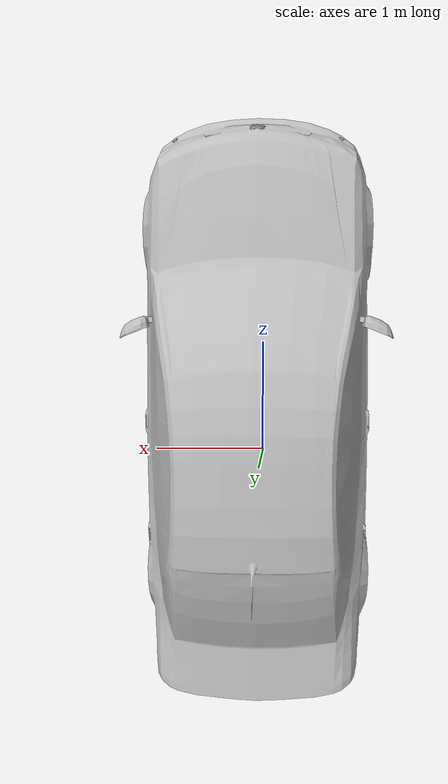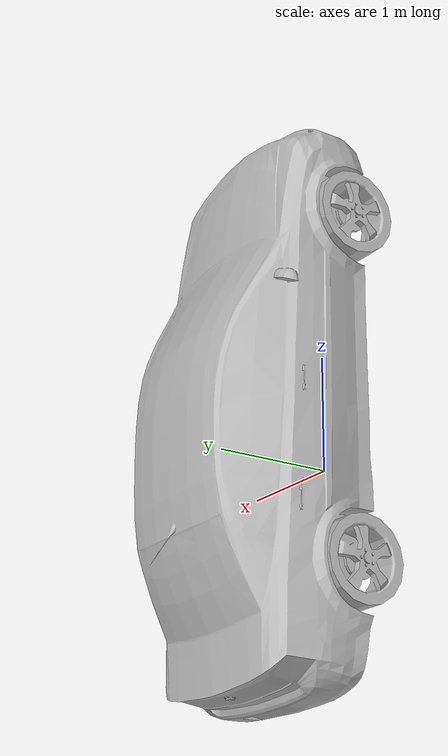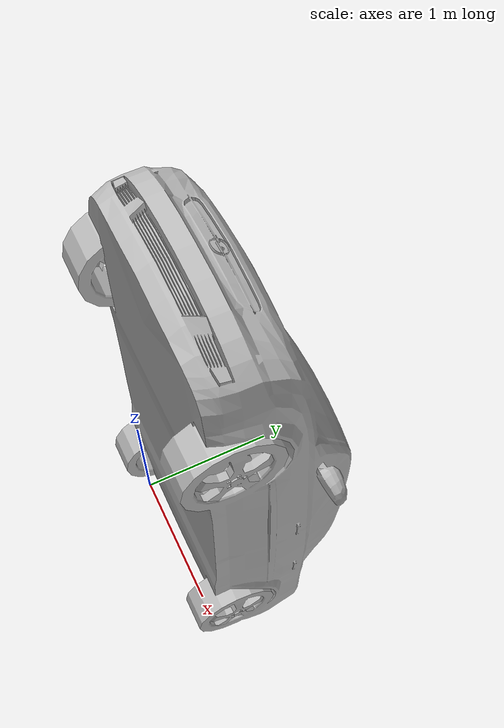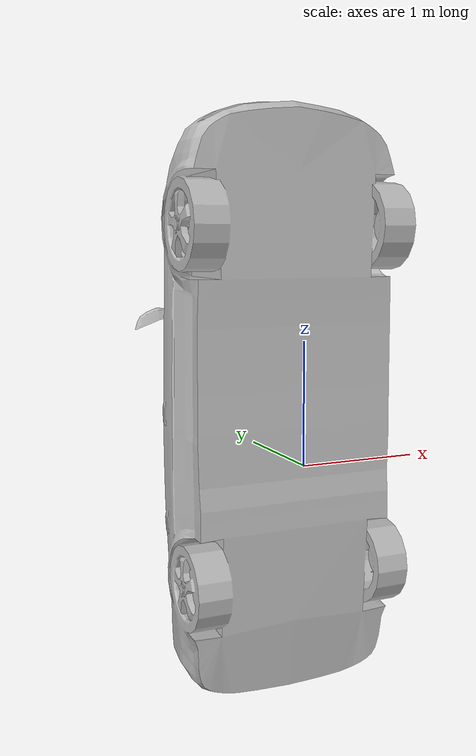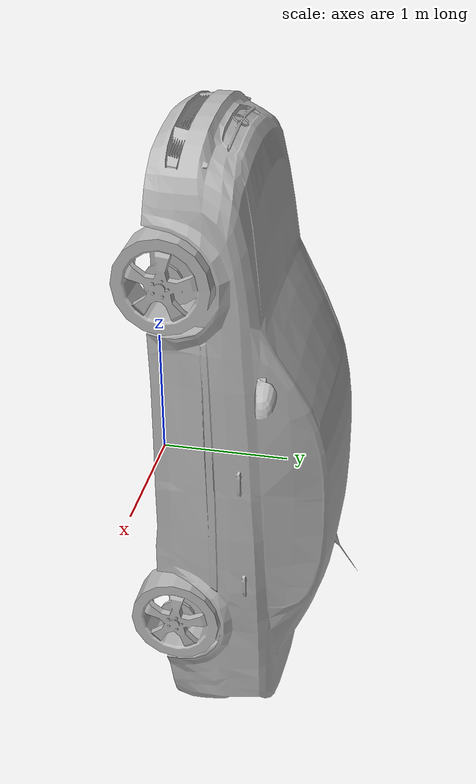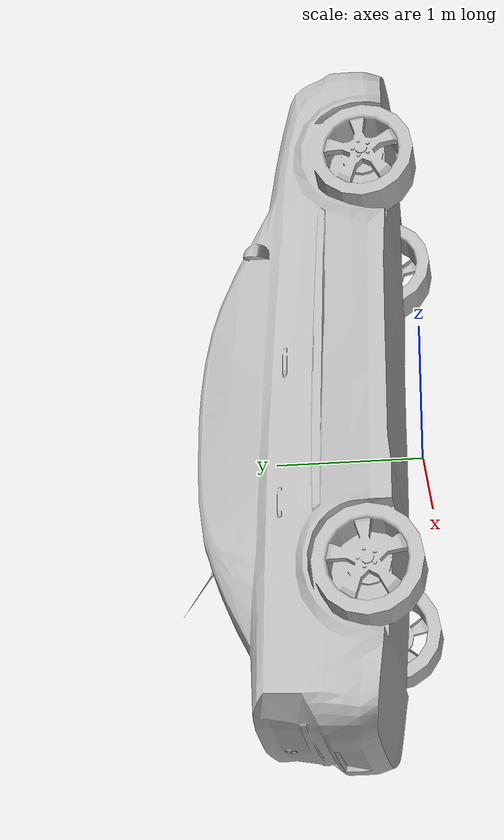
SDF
<?xml version='1.0'?>
<sdf version="1.4">
<model name="opel">
  <pose>0 0 0.5 0 0 0</pose>
  <static>true</static>

  <link name="opel">
      <gravity>0</gravity> <!-- No hace falta gravedad para estático -->
      <collision name="collision">
          <geometry>
              <mesh>
                  <uri>model://opel/meshes/model.obj</uri>
              </mesh>
          </geometry>
      </collision>
      <visual name="visual">
          <geometry>
              <mesh>
                  <uri>model://opel/meshes/model.obj</uri>
              </mesh>
          </geometry>
      </visual>
  </link>

  <!-- Plugins de control o sensores no necesarios para estático -->

  <!-- Cámaras -->

</model>
</sdf>
